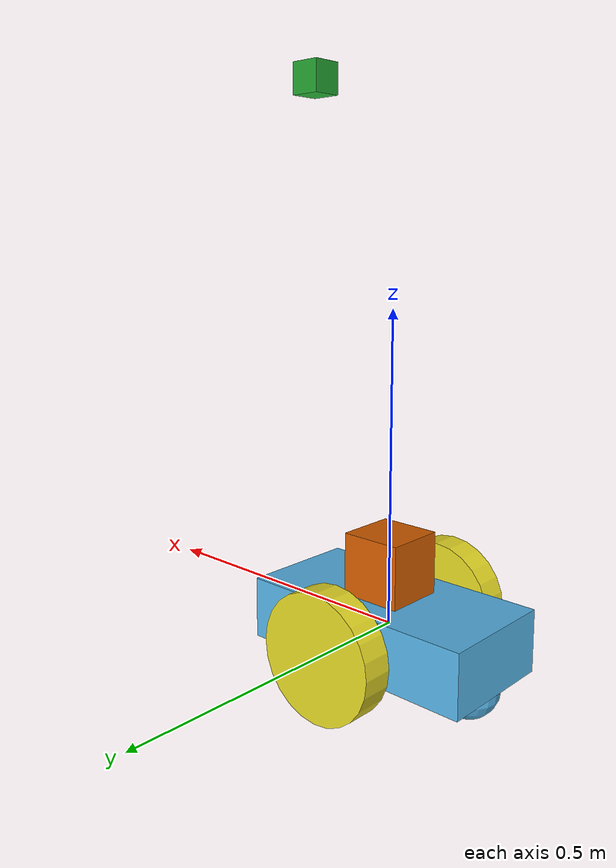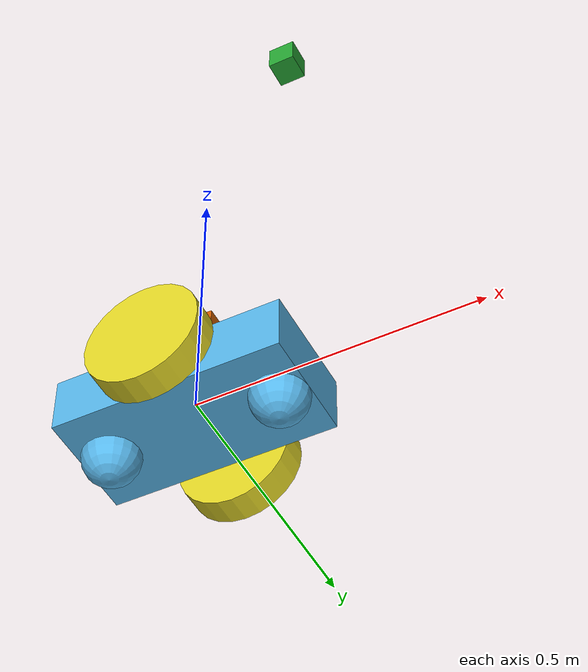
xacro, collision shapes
<?xml version='1.0'?>

<robot name="robert" xmlns:xacro="http://www.ros.org/wiki/xacro">

  <xacro:property name="cameraSize" value="0.05"/>
  <xacro:property name="cameraMass" value="0.05"/>
  <xacro:property name="M_PI" value="3.14159265359"/>

  <xacro:include filename="$(find robert)/urdf/robert.gazebo"/>
  <xacro:include filename="$(find robert)/urdf/robert.material"/>
  <xacro:include filename="$(find robert)/urdf/robert_d435_properties.urdf.xacro" />

  <link name="robot_footprint"></link>

  <joint name="robot_footprint_joint" type="fixed">
    <origin xyz="0 0 0" rpy="0 0 0" />
    <parent link="robot_footprint"/>
    <child link="chassis" />
  </joint>

  <link name='chassis'>
    <pose>0 0 0.1 0 0 0</pose>

    <inertial>
      <mass value="5.0"/>
      <origin xyz="0.0 0 0.1" rpy=" 0 0 0"/>
      <inertia
          ixx="0.1" ixy="0" ixz="0"
          iyy="0.1" iyz="0"
          izz="0.1"
      />
    </inertial>

    <collision name='collision'>
      <geometry>
        <box size=".4 .2 .1"/>
      </geometry>
    </collision>

    <visual name='chassis_visual'>
      <origin xyz="0 0 -0.05" rpy="0 0 0" />
      <geometry>
        <mesh filename="package://robert/meshes/robot_colored.dae" />
      </geometry>
    </visual>

    <collision name='caster_collision'>
      <origin xyz="-0.15 0 -0.05" rpy=" 0 0 0"/>
      <geometry>
        <sphere radius="0.05"/>
      </geometry>
    </collision>

    <visual name='caster_visual'>
      <origin xyz="-0.15 0 -0.05" rpy=" 0 0 0"/>
      <geometry>
        <sphere radius="0.05"/>
      </geometry>
    </visual>

    <collision name='caster_front_collision'>
      <origin xyz="0.15 0 -0.05" rpy=" 0 0 0"/>
      <geometry>
        <sphere radius="0.05"/>
      </geometry>
    </collision>

    <visual name='caster_front_visual'>
      <origin xyz="0.15 0 -0.05" rpy=" 0 0 0"/>
      <geometry>
        <sphere radius="0.05"/>
      </geometry>
    </visual>

  </link>

  <link name="left_wheel">
    <!--origin xyz="0.1 0.13 0.1" rpy="0 1.5707 1.5707"/-->
    <collision name="collision">
      <origin xyz="0 0 0" rpy="0 1.5707 1.5707"/>
      <geometry>
        <cylinder radius="0.1" length="0.05"/>
      </geometry>
    </collision>
    <visual name="left_wheel_visual">
      <origin xyz="0 0 0" rpy="0 1.5707 1.5707"/>
      <geometry>
        <cylinder radius="0.1" length="0.05"/>
      </geometry>
      <material name="yellow"/>
    </visual>
    <inertial>
      <origin xyz="0 0 0" rpy="0 1.5707 1.5707"/>
      <mass value="5"/>
      <inertia
        ixx=".1" ixy="0.0" ixz="0.0"
        iyy=".1" iyz="0.0"
        izz=".1"/>
    </inertial>
  </link>

  <link name="right_wheel">
    <!--origin xyz="0.1 -0.13 0.1" rpy="0 1.5707 1.5707"/-->
    <collision name="collision">
      <origin xyz="0 0 0" rpy="0 1.5707 1.5707"/>
      <geometry>
        <cylinder radius="0.1" length="0.05"/>
      </geometry>
    </collision>
    <visual name="right_wheel_visual">
      <origin xyz="0 0 0" rpy="0 1.5707 1.5707"/>
      <geometry>
        <cylinder radius="0.1" length="0.05"/>
      </geometry>
      <material name="yellow"/>
    </visual>
    <inertial>
      <origin xyz="0 0 0" rpy="0 1.5707 1.5707"/>
      <mass value="5"/>
      <inertia
        ixx=".1" ixy="0.0" ixz="0.0"
        iyy=".1" iyz="0.0"
        izz=".1"/>
    </inertial>
  </link>

  <joint type="continuous" name="left_wheel_hinge">
    <origin xyz="0 0.15 0" rpy="0 0 0"/>
    <!--origin xyz="0.1 0.13 0" rpy="0 1.5707 1.5707"/-->
    <child link="left_wheel"/>
    <parent link="chassis"/>
    <axis xyz="0 1 0" rpy="0 0 0"/>
    <joint_properties damping="0.0" friction="0.0"/>
  </joint>

  <joint type="continuous" name="right_wheel_hinge">
    <origin xyz="0 -0.15 0" rpy="0 0 0"/>
    <!--origin xyz="0.1 -0.13 0" rpy="0 1.5707 1.5707"/-->
    <child link="right_wheel"/>
    <parent link="chassis"/>
    <axis xyz="0 1 0" rpy="0 0 0"/>
    <joint_properties damping="0.0" friction="0.0"/>
  </joint>

<!-- camera2d-3d link-->

  <link name="camera_link">
    <collision>
      <origin xyz="0 0 0" rpy="0 0 0"/>
      <geometry>
        <box size="${cameraSize} ${cameraSize} ${cameraSize}"/>
      </geometry>
    </collision>

    <visual>
      <origin xyz="0 0 0" rpy="${M_PI/2} 0 ${M_PI/2}"/>
      <geometry>
        <mesh filename="package://robert/meshes/d435.dae" />
      </geometry>
      <material name="green"/>
    </visual>

    <inertial>
      <mass value="${cameraMass}" />
      <origin xyz="0 0 0" rpy="0 0 0"/>
      <box_inertia m="${cameraMass}" x="${cameraSize}" y="${cameraSize}" z="${cameraSize}" />
      <inertia ixx="1e-6" ixy="0" ixz="0" iyy="1e-6" iyz="0" izz="1e-6" />
    </inertial>
  </link>

  <!-- joint camera  -->

  <joint name="camera_joint" type="fixed">
    <axis xyz="0 1 0" />
    <origin xyz=".16 0 0.85" rpy="0 0 0"/>
    <parent link="chassis"/>
    <child link="camera_link"/>
  </joint>

    <!--~~~~~~~~ camera depth joints and links ~~~~~~~~-->
    <!-- JOINT -->
    <joint name="camera_depth_joint" type="fixed">
      <origin xyz="0 0 0" rpy="0 0 0"/>
      <parent link="camera_link"/>
      <child link="camera_depth_frame" />
    </joint>
    <!-- LINK -->
    <link name="camera_depth_frame"/>

    <!-- JOINT -->
    <joint name="camera_depth_optical_joint" type="fixed">
      <origin xyz="0 0 0" rpy="${-M_PI/2} 0 ${-M_PI/2}" />
      <parent link="camera_depth_frame" />
      <child link="camera_depth_optical_frame" />
    </joint>
    <!-- LINK -->
    <link name="camera_depth_optical_frame"/>

    <!--~~~~~~~~ camera left IR joints and links ~~~~~~~~-->
    <!-- JOINT -->
    <joint name="camera_left_ir_joint" type="fixed">
      <origin xyz="0 ${d435_cam_depth_to_left_ir_offset} 0" rpy="0 0 0" />
      <parent link="camera_depth_frame" />
      <child link="camera_left_ir_frame" />
    </joint>
    <!-- LINK -->
    <link name="camera_left_ir_frame"/>

    <!-- JOINT -->
    <joint name="camera_left_ir_optical_joint" type="fixed">
      <origin xyz="0 0 0" rpy="${-M_PI/2} 0 ${-M_PI/2}" />
      <parent link="camera_left_ir_frame" />
      <child link="camera_left_ir_optical_frame" />
    </joint>
    <!-- LINK -->
    <link name="camera_left_ir_optical_frame"/>

    <!--~~~~~~~~ camera right IR joints and links ~~~~~~~~-->
    <!-- JOINT -->
    <joint name="camera_right_ir_joint" type="fixed">
      <origin xyz="0 ${d435_cam_depth_to_right_ir_offset} 0" rpy="0 0 0" />
      <parent link="camera_depth_frame" />
      <child link="camera_right_ir_frame" />
    </joint>
    <!-- LINK -->
    <link name="camera_right_ir_frame"/>

    <!-- JOINT -->
    <joint name="camera_right_ir_optical_joint" type="fixed">
      <origin xyz="0 0 0" rpy="${-M_PI/2} 0 ${-M_PI/2}" />
      <parent link="camera_right_ir_frame" />
      <child link="camera_right_ir_optical_frame" />
    </joint>
    <!-- LINK -->
    <link name="camera_right_ir_optical_frame"/>

    <!--~~~~~~~~ camera color joints and links ~~~~~~~~-->
    <!-- JOINT -->
    <joint name="camera_color_joint" type="fixed">
      <origin xyz="0 ${d435_cam_depth_to_color_offset} 0" rpy="0 0 0" />
      <parent link="camera_depth_frame" />
      <child link="camera_color_frame" />
    </joint>
    <!-- LINK -->
    <link name="camera_color_frame"/>

    <!-- JOINT -->
    <joint name="camera_color_optical_joint" type="fixed">
      <origin xyz="0 0 0" rpy="${-M_PI/2} 0 ${-M_PI/2}" />
      <parent link="camera_color_frame" />
      <child link="camera_color_optical_frame" />
    </joint>
    <!-- LINK -->
    <link name="camera_color_optical_frame"/>

    <!--~~~~~~~~ End of camera depth joints and links ~~~~~~~~-->

  <!-- Hokuyo Laser -->
  <link name="hokuyo_link">
    <collision>
      <origin xyz="0 0 0" rpy="0 0 0"/>
      <geometry>
    <box size="0.1 0.1 0.1"/>
      </geometry>
    </collision>

    <visual>
      <origin xyz="0 0 0" rpy="0 0 0"/>
      <geometry>
        <mesh filename="package://robert/meshes/hokuyo.dae"/>
      </geometry>
    </visual>

    <inertial>
      <mass value="1e-5" />
      <origin xyz="0 0 0" rpy="0 0 0"/>
      <inertia ixx="1e-6" ixy="0" ixz="0" iyy="1e-6" iyz="0" izz="1e-6" />
    </inertial>
  </link>

  <joint name="hokuyo_joint" type="fixed">
    <axis xyz="0 1 0" />
    <origin xyz="0.0 0 0.1" rpy="0 0 0"/>
    <parent link="chassis"/>
    <child link="hokuyo_link"/>
  </joint>

</robot>

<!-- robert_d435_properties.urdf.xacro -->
<robot name="robert_d435_properties" xmlns:xacro="http://ros.org/wiki/xacro">

	<xacro:property name="cam_px" value="0.087" />
  <xacro:property name="cam_py" value="-0.0125" />
	<xacro:property name="cam_pz" value="0.41" />
	<xacro:property name="cam_or" value="0" />
	<xacro:property name="cam_op" value="0" />
	<xacro:property name="cam_oy" value="0" />

  <xacro:property name="parent" value="base_link"/>
  <!-- The following values are approximate, and the camera node
   publishing TF values with actual calibrated camera extrinsic values -->
  <xacro:property name="d435_cam_depth_to_left_ir_offset" value="0.0"/>
  <xacro:property name="d435_cam_depth_to_right_ir_offset" value="-0.050"/>
  <xacro:property name="d435_cam_depth_to_color_offset" value="0.015"/>

  <!-- The following values model the aluminum peripherial case for the
  D435 camera, with the camera joint represented by the actual
  peripherial camera tripod mount -->
  <xacro:property name="d435_cam_width" value="0.090"/>
  <xacro:property name="d435_cam_height" value="0.025"/>
  <xacro:property name="d435_cam_depth" value="0.02505"/>
  <xacro:property name="d435_cam_mount_from_center_offset" value="0.0149"/>

  <!-- The following offset is relative the the physical D435 camera peripherial
  camera tripod mount -->
  <xacro:property name="d435_cam_depth_px" value="${d435_cam_mount_from_center_offset}"/>
  <xacro:property name="d435_cam_depth_py" value="0.0175"/>
  <xacro:property name="d435_cam_depth_pz" value="${d435_cam_height/2}"/>

</robot>
